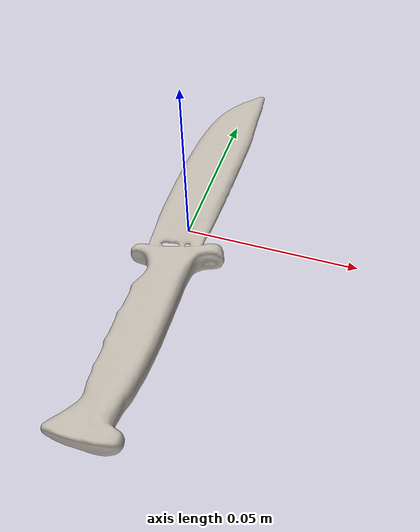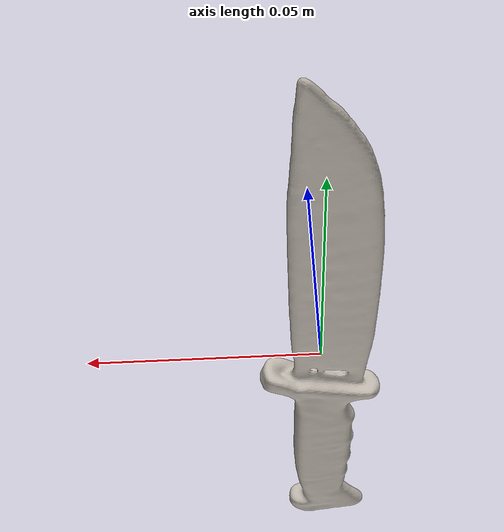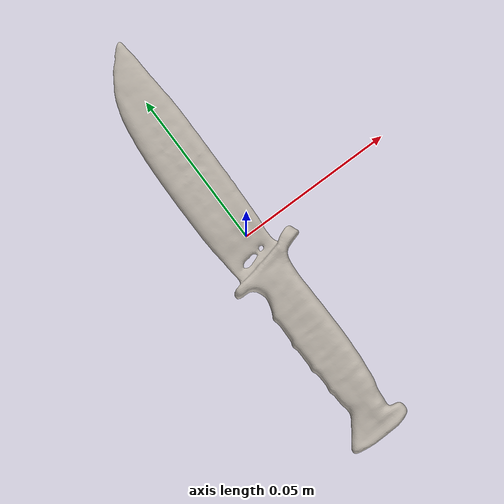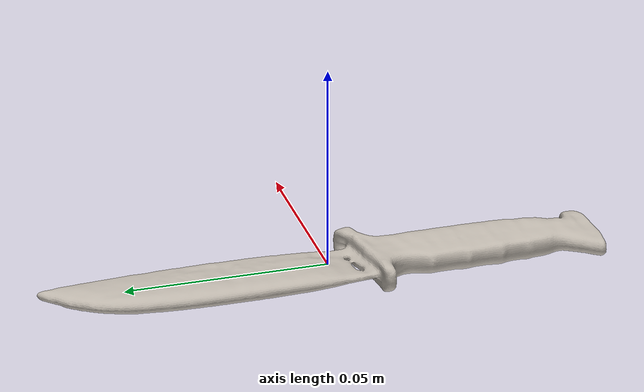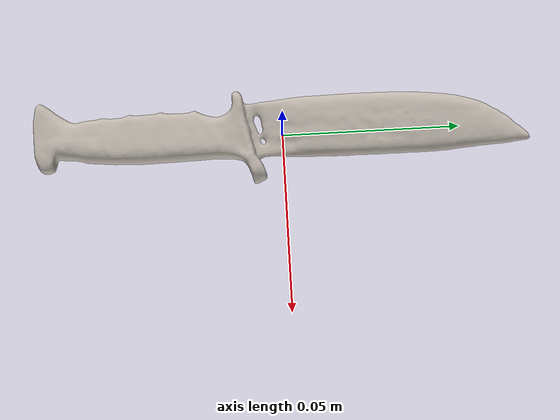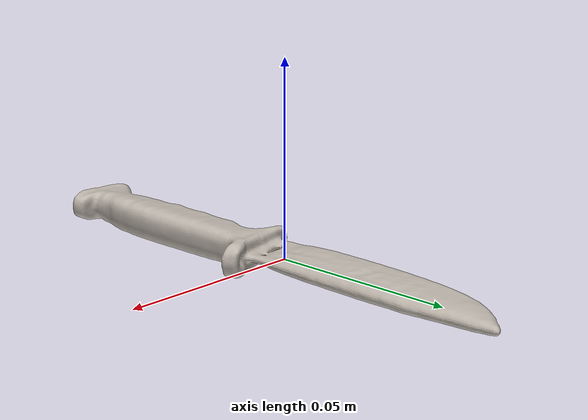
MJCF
<?xml version='1.0' encoding='utf-8'?>
<mujoco model="knife_0">
  <asset>
    <texture file="ceramic.png" name="tex-knife_0" type="2d" />
    <material name="knife_0" reflectance="0.5" texrepeat="1 1" texture="tex-knife_0" texuniform="false" />
    <mesh file="visual/model_normalized_0.obj" name="model_normalized_0_vis" scale="0.14000000000000004 0.14000000000000004 0.14000000000000004" refquat="0.7071067811865474 0.0 -0.7071067811865474 0.0" />
    <mesh file="collision/model_normalized_collision_13.obj" name="model_normalized_collision_13._coll" scale="0.14000000000000004 0.14000000000000004 0.14000000000000004" refquat="0.7071067811865474 0.0 -0.7071067811865474 0.0" />
    <mesh file="collision/model_normalized_collision_15.obj" name="model_normalized_collision_15._coll" scale="0.14000000000000004 0.14000000000000004 0.14000000000000004" refquat="0.7071067811865474 0.0 -0.7071067811865474 0.0" />
    <mesh file="collision/model_normalized_collision_10.obj" name="model_normalized_collision_10._coll" scale="0.14000000000000004 0.14000000000000004 0.14000000000000004" refquat="0.7071067811865474 0.0 -0.7071067811865474 0.0" />
    <mesh file="collision/model_normalized_collision_26.obj" name="model_normalized_collision_26._coll" scale="0.14000000000000004 0.14000000000000004 0.14000000000000004" refquat="0.7071067811865474 0.0 -0.7071067811865474 0.0" />
    <mesh file="collision/model_normalized_collision_25.obj" name="model_normalized_collision_25._coll" scale="0.14000000000000004 0.14000000000000004 0.14000000000000004" refquat="0.7071067811865474 0.0 -0.7071067811865474 0.0" />
    <mesh file="collision/model_normalized_collision_5.obj" name="model_normalized_collision_5._coll" scale="0.14000000000000004 0.14000000000000004 0.14000000000000004" refquat="0.7071067811865474 0.0 -0.7071067811865474 0.0" />
    <mesh file="collision/model_normalized_collision_31.obj" name="model_normalized_collision_31._coll" scale="0.14000000000000004 0.14000000000000004 0.14000000000000004" refquat="0.7071067811865474 0.0 -0.7071067811865474 0.0" />
    <mesh file="collision/model_normalized_collision_3.obj" name="model_normalized_collision_3._coll" scale="0.14000000000000004 0.14000000000000004 0.14000000000000004" refquat="0.7071067811865474 0.0 -0.7071067811865474 0.0" />
    <mesh file="collision/model_normalized_collision_14.obj" name="model_normalized_collision_14._coll" scale="0.14000000000000004 0.14000000000000004 0.14000000000000004" refquat="0.7071067811865474 0.0 -0.7071067811865474 0.0" />
    <mesh file="collision/model_normalized_collision_28.obj" name="model_normalized_collision_28._coll" scale="0.14000000000000004 0.14000000000000004 0.14000000000000004" refquat="0.7071067811865474 0.0 -0.7071067811865474 0.0" />
    <mesh file="collision/model_normalized_collision_11.obj" name="model_normalized_collision_11._coll" scale="0.14000000000000004 0.14000000000000004 0.14000000000000004" refquat="0.7071067811865474 0.0 -0.7071067811865474 0.0" />
    <mesh file="collision/model_normalized_collision_29.obj" name="model_normalized_collision_29._coll" scale="0.14000000000000004 0.14000000000000004 0.14000000000000004" refquat="0.7071067811865474 0.0 -0.7071067811865474 0.0" />
    <mesh file="collision/model_normalized_collision_24.obj" name="model_normalized_collision_24._coll" scale="0.14000000000000004 0.14000000000000004 0.14000000000000004" refquat="0.7071067811865474 0.0 -0.7071067811865474 0.0" />
    <mesh file="collision/model_normalized_collision_1.obj" name="model_normalized_collision_1._coll" scale="0.14000000000000004 0.14000000000000004 0.14000000000000004" refquat="0.7071067811865474 0.0 -0.7071067811865474 0.0" />
    <mesh file="collision/model_normalized_collision_0.obj" name="model_normalized_collision_0._coll" scale="0.14000000000000004 0.14000000000000004 0.14000000000000004" refquat="0.7071067811865474 0.0 -0.7071067811865474 0.0" />
    <mesh file="collision/model_normalized_collision_27.obj" name="model_normalized_collision_27._coll" scale="0.14000000000000004 0.14000000000000004 0.14000000000000004" refquat="0.7071067811865474 0.0 -0.7071067811865474 0.0" />
    <mesh file="collision/model_normalized_collision_9.obj" name="model_normalized_collision_9._coll" scale="0.14000000000000004 0.14000000000000004 0.14000000000000004" refquat="0.7071067811865474 0.0 -0.7071067811865474 0.0" />
    <mesh file="collision/model_normalized_collision_19.obj" name="model_normalized_collision_19._coll" scale="0.14000000000000004 0.14000000000000004 0.14000000000000004" refquat="0.7071067811865474 0.0 -0.7071067811865474 0.0" />
    <mesh file="collision/model_normalized_collision_21.obj" name="model_normalized_collision_21._coll" scale="0.14000000000000004 0.14000000000000004 0.14000000000000004" refquat="0.7071067811865474 0.0 -0.7071067811865474 0.0" />
    <mesh file="collision/model_normalized_collision_30.obj" name="model_normalized_collision_30._coll" scale="0.14000000000000004 0.14000000000000004 0.14000000000000004" refquat="0.7071067811865474 0.0 -0.7071067811865474 0.0" />
    <mesh file="collision/model_normalized_collision_20.obj" name="model_normalized_collision_20._coll" scale="0.14000000000000004 0.14000000000000004 0.14000000000000004" refquat="0.7071067811865474 0.0 -0.7071067811865474 0.0" />
    <mesh file="collision/model_normalized_collision_2.obj" name="model_normalized_collision_2._coll" scale="0.14000000000000004 0.14000000000000004 0.14000000000000004" refquat="0.7071067811865474 0.0 -0.7071067811865474 0.0" />
    <mesh file="collision/model_normalized_collision_7.obj" name="model_normalized_collision_7._coll" scale="0.14000000000000004 0.14000000000000004 0.14000000000000004" refquat="0.7071067811865474 0.0 -0.7071067811865474 0.0" />
    <mesh file="collision/model_normalized_collision_22.obj" name="model_normalized_collision_22._coll" scale="0.14000000000000004 0.14000000000000004 0.14000000000000004" refquat="0.7071067811865474 0.0 -0.7071067811865474 0.0" />
    <mesh file="collision/model_normalized_collision_16.obj" name="model_normalized_collision_16._coll" scale="0.14000000000000004 0.14000000000000004 0.14000000000000004" refquat="0.7071067811865474 0.0 -0.7071067811865474 0.0" />
    <mesh file="collision/model_normalized_collision_8.obj" name="model_normalized_collision_8._coll" scale="0.14000000000000004 0.14000000000000004 0.14000000000000004" refquat="0.7071067811865474 0.0 -0.7071067811865474 0.0" />
    <mesh file="collision/model_normalized_collision_6.obj" name="model_normalized_collision_6._coll" scale="0.14000000000000004 0.14000000000000004 0.14000000000000004" refquat="0.7071067811865474 0.0 -0.7071067811865474 0.0" />
    <mesh file="collision/model_normalized_collision_18.obj" name="model_normalized_collision_18._coll" scale="0.14000000000000004 0.14000000000000004 0.14000000000000004" refquat="0.7071067811865474 0.0 -0.7071067811865474 0.0" />
    <mesh file="collision/model_normalized_collision_17.obj" name="model_normalized_collision_17._coll" scale="0.14000000000000004 0.14000000000000004 0.14000000000000004" refquat="0.7071067811865474 0.0 -0.7071067811865474 0.0" />
    <mesh file="collision/model_normalized_collision_12.obj" name="model_normalized_collision_12._coll" scale="0.14000000000000004 0.14000000000000004 0.14000000000000004" refquat="0.7071067811865474 0.0 -0.7071067811865474 0.0" />
    <mesh file="collision/model_normalized_collision_4.obj" name="model_normalized_collision_4._coll" scale="0.14000000000000004 0.14000000000000004 0.14000000000000004" refquat="0.7071067811865474 0.0 -0.7071067811865474 0.0" />
    <mesh file="collision/model_normalized_collision_23.obj" name="model_normalized_collision_23._coll" scale="0.14000000000000004 0.14000000000000004 0.14000000000000004" refquat="0.7071067811865474 0.0 -0.7071067811865474 0.0" />
    <texture type="2d" name="eab725377603_knife__3d_asset_0_g_texture_kd" file="visual/eab725377603_knife__3d_asset_0_g_texture_kd.png" />
    <material name="Material_0" texture="eab725377603_knife__3d_asset_0_g_texture_kd" specular="0.5" shininess="0.5" />
  </asset>
  <default>
    <default class="region">
      <geom group="1" conaffinity="0" contype="0" rgba="0 1 0 0" />
    </default>
  </default>
  <worldbody>
    <body>
      <body name="object">
        <geom solimp="0.998 0.998 0.001" solref="0.001 1" density="100" friction="0.95 0.3 0.1" type="mesh" mesh="model_normalized_0_vis" conaffinity="0" contype="0" group="1" material="Material_0" />
        <geom solimp="0.998 0.998 0.001" solref="0.001 1" density="100" friction="0.95 0.3 0.1" type="mesh" mesh="model_normalized_collision_13._coll" group="0" rgba="0.8 0.8 0.8 0.0" />
        <geom solimp="0.998 0.998 0.001" solref="0.001 1" density="100" friction="0.95 0.3 0.1" type="mesh" mesh="model_normalized_collision_15._coll" group="0" rgba="0.8 0.8 0.8 0.0" />
        <geom solimp="0.998 0.998 0.001" solref="0.001 1" density="100" friction="0.95 0.3 0.1" type="mesh" mesh="model_normalized_collision_10._coll" group="0" rgba="0.8 0.8 0.8 0.0" />
        <geom solimp="0.998 0.998 0.001" solref="0.001 1" density="100" friction="0.95 0.3 0.1" type="mesh" mesh="model_normalized_collision_26._coll" group="0" rgba="0.8 0.8 0.8 0.0" />
        <geom solimp="0.998 0.998 0.001" solref="0.001 1" density="100" friction="0.95 0.3 0.1" type="mesh" mesh="model_normalized_collision_25._coll" group="0" rgba="0.8 0.8 0.8 0.0" />
        <geom solimp="0.998 0.998 0.001" solref="0.001 1" density="100" friction="0.95 0.3 0.1" type="mesh" mesh="model_normalized_collision_5._coll" group="0" rgba="0.8 0.8 0.8 0.0" />
        <geom solimp="0.998 0.998 0.001" solref="0.001 1" density="100" friction="0.95 0.3 0.1" type="mesh" mesh="model_normalized_collision_31._coll" group="0" rgba="0.8 0.8 0.8 0.0" />
        <geom solimp="0.998 0.998 0.001" solref="0.001 1" density="100" friction="0.95 0.3 0.1" type="mesh" mesh="model_normalized_collision_3._coll" group="0" rgba="0.8 0.8 0.8 0.0" />
        <geom solimp="0.998 0.998 0.001" solref="0.001 1" density="100" friction="0.95 0.3 0.1" type="mesh" mesh="model_normalized_collision_14._coll" group="0" rgba="0.8 0.8 0.8 0.0" />
        <geom solimp="0.998 0.998 0.001" solref="0.001 1" density="100" friction="0.95 0.3 0.1" type="mesh" mesh="model_normalized_collision_28._coll" group="0" rgba="0.8 0.8 0.8 0.0" />
        <geom solimp="0.998 0.998 0.001" solref="0.001 1" density="100" friction="0.95 0.3 0.1" type="mesh" mesh="model_normalized_collision_11._coll" group="0" rgba="0.8 0.8 0.8 0.0" />
        <geom solimp="0.998 0.998 0.001" solref="0.001 1" density="100" friction="0.95 0.3 0.1" type="mesh" mesh="model_normalized_collision_29._coll" group="0" rgba="0.8 0.8 0.8 0.0" />
        <geom solimp="0.998 0.998 0.001" solref="0.001 1" density="100" friction="0.95 0.3 0.1" type="mesh" mesh="model_normalized_collision_24._coll" group="0" rgba="0.8 0.8 0.8 0.0" />
        <geom solimp="0.998 0.998 0.001" solref="0.001 1" density="100" friction="0.95 0.3 0.1" type="mesh" mesh="model_normalized_collision_1._coll" group="0" rgba="0.8 0.8 0.8 0.0" />
        <geom solimp="0.998 0.998 0.001" solref="0.001 1" density="100" friction="0.95 0.3 0.1" type="mesh" mesh="model_normalized_collision_0._coll" group="0" rgba="0.8 0.8 0.8 0.0" />
        <geom solimp="0.998 0.998 0.001" solref="0.001 1" density="100" friction="0.95 0.3 0.1" type="mesh" mesh="model_normalized_collision_27._coll" group="0" rgba="0.8 0.8 0.8 0.0" />
        <geom solimp="0.998 0.998 0.001" solref="0.001 1" density="100" friction="0.95 0.3 0.1" type="mesh" mesh="model_normalized_collision_9._coll" group="0" rgba="0.8 0.8 0.8 0.0" />
        <geom solimp="0.998 0.998 0.001" solref="0.001 1" density="100" friction="0.95 0.3 0.1" type="mesh" mesh="model_normalized_collision_19._coll" group="0" rgba="0.8 0.8 0.8 0.0" />
        <geom solimp="0.998 0.998 0.001" solref="0.001 1" density="100" friction="0.95 0.3 0.1" type="mesh" mesh="model_normalized_collision_21._coll" group="0" rgba="0.8 0.8 0.8 0.0" />
        <geom solimp="0.998 0.998 0.001" solref="0.001 1" density="100" friction="0.95 0.3 0.1" type="mesh" mesh="model_normalized_collision_30._coll" group="0" rgba="0.8 0.8 0.8 0.0" />
        <geom solimp="0.998 0.998 0.001" solref="0.001 1" density="100" friction="0.95 0.3 0.1" type="mesh" mesh="model_normalized_collision_20._coll" group="0" rgba="0.8 0.8 0.8 0.0" />
        <geom solimp="0.998 0.998 0.001" solref="0.001 1" density="100" friction="0.95 0.3 0.1" type="mesh" mesh="model_normalized_collision_2._coll" group="0" rgba="0.8 0.8 0.8 0.0" />
        <geom solimp="0.998 0.998 0.001" solref="0.001 1" density="100" friction="0.95 0.3 0.1" type="mesh" mesh="model_normalized_collision_7._coll" group="0" rgba="0.8 0.8 0.8 0.0" />
        <geom solimp="0.998 0.998 0.001" solref="0.001 1" density="100" friction="0.95 0.3 0.1" type="mesh" mesh="model_normalized_collision_22._coll" group="0" rgba="0.8 0.8 0.8 0.0" />
        <geom solimp="0.998 0.998 0.001" solref="0.001 1" density="100" friction="0.95 0.3 0.1" type="mesh" mesh="model_normalized_collision_16._coll" group="0" rgba="0.8 0.8 0.8 0.0" />
        <geom solimp="0.998 0.998 0.001" solref="0.001 1" density="100" friction="0.95 0.3 0.1" type="mesh" mesh="model_normalized_collision_8._coll" group="0" rgba="0.8 0.8 0.8 0.0" />
        <geom solimp="0.998 0.998 0.001" solref="0.001 1" density="100" friction="0.95 0.3 0.1" type="mesh" mesh="model_normalized_collision_6._coll" group="0" rgba="0.8 0.8 0.8 0.0" />
        <geom solimp="0.998 0.998 0.001" solref="0.001 1" density="100" friction="0.95 0.3 0.1" type="mesh" mesh="model_normalized_collision_18._coll" group="0" rgba="0.8 0.8 0.8 0.0" />
        <geom solimp="0.998 0.998 0.001" solref="0.001 1" density="100" friction="0.95 0.3 0.1" type="mesh" mesh="model_normalized_collision_17._coll" group="0" rgba="0.8 0.8 0.8 0.0" />
        <geom solimp="0.998 0.998 0.001" solref="0.001 1" density="100" friction="0.95 0.3 0.1" type="mesh" mesh="model_normalized_collision_12._coll" group="0" rgba="0.8 0.8 0.8 0.0" />
        <geom solimp="0.998 0.998 0.001" solref="0.001 1" density="100" friction="0.95 0.3 0.1" type="mesh" mesh="model_normalized_collision_4._coll" group="0" rgba="0.8 0.8 0.8 0.0" />
        <geom solimp="0.998 0.998 0.001" solref="0.001 1" density="100" friction="0.95 0.3 0.1" type="mesh" mesh="model_normalized_collision_23._coll" group="0" rgba="0.8 0.8 0.8 0.0" />
        <geom class="region" name="reg_bbox" type="box" pos="-0.0004839674000000002 7.000000035173317e-10 3.457580000000007e-05" size="0.013303911600000004 0.07106060640000002 0.005303030600000001" />
      </body>
    <site rgba="0 0 0 0" size="0.005" pos="0 0 -0.0052684548" name="bottom_site" /><site rgba="0 0 0 0" size="0.005" pos="0 0 0.0053376064" name="top_site" /><site rgba="0 0 0 0" size="0.005" pos="0.071060607 0.071060607 0" name="horizontal_radius_site" /></body>
  </worldbody>
</mujoco>
